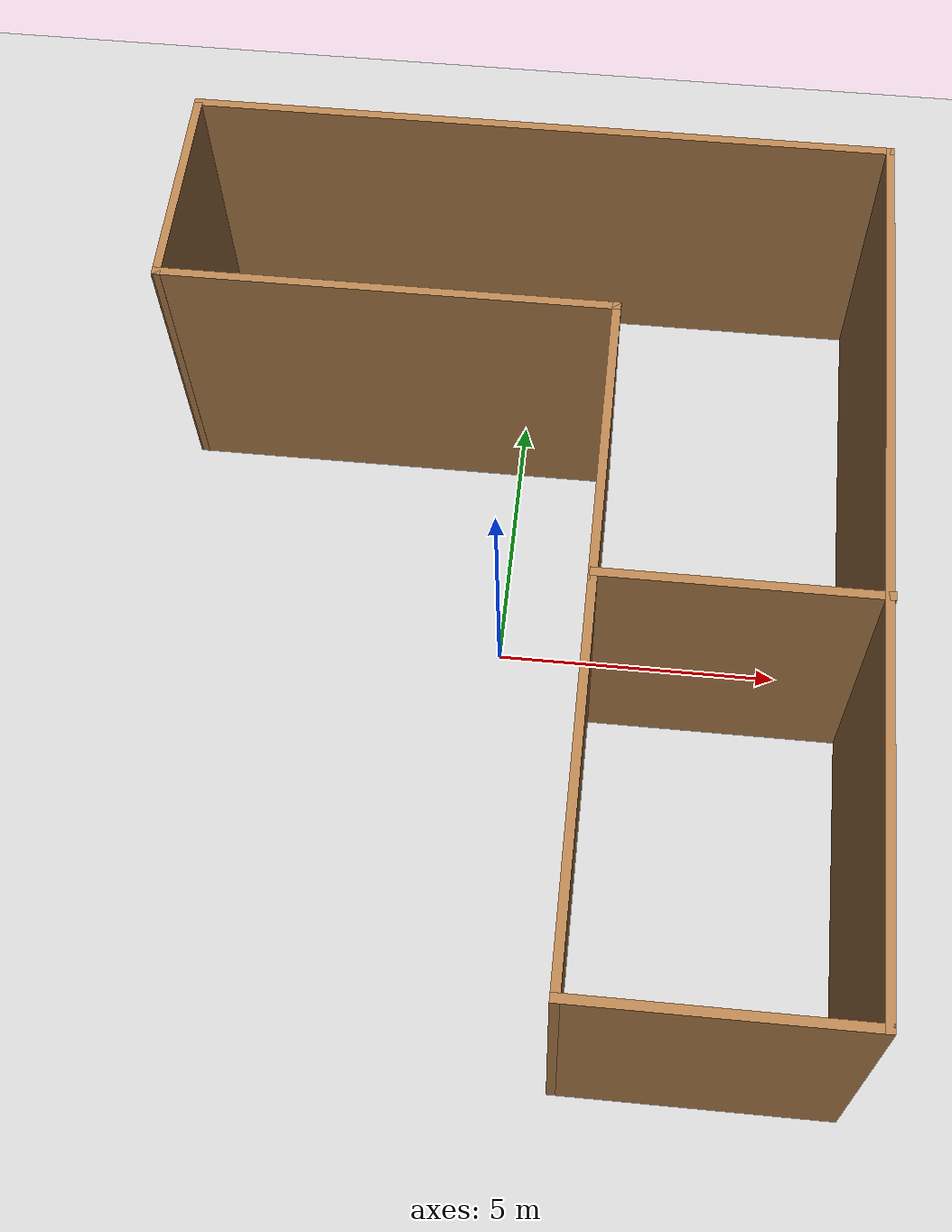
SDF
<sdf version="1.7">
 <world name="default">
  <plugin name="gazebo_ros_state" filename="libgazebo_ros_state.so">
   <ros>
    <namespace>/plug</namespace>
    <argument>model_states:=model_states_plug</argument>
    <argument>link_states:=link_states_plug</argument>
   </ros>
   <update_rate>100.0</update_rate>
  </plugin>
  <plugin name="disable_physics" filename="libdisable_physics.so"/>
  <light name="sun" type="directional">
   <pose>0 0 10 0 -0 0</pose>
   <diffuse>0.8 0.8 0.8 1</diffuse>
   <specular>0.2 0.2 0.2 1</specular>
   <attenuation>
    <range>1000</range>
    <constant>0.9</constant>
    <linear>0.01</linear>
    <quadratic>0.001</quadratic>
   </attenuation>
   <direction>-0.5 0.1 -0.9</direction>
   <spot><inner_angle>0</inner_angle><outer_angle>0</outer_angle><falloff>0</falloff></spot>
  </light>
  <model name="ground_plane">
   <static>1</static>
   <link name="link">
    <collision name="collision">
     <geometry><plane><normal>0 0 1</normal><size>100 100</size></plane></geometry>
     <surface>
      <contact><collide_bitmask>65535</collide_bitmask></contact>
      <friction><ode><mu>100</mu><mu2>50</mu2></ode></friction>
     </surface>
    </collision>
    <visual name="visual">
     <cast_shadows>0</cast_shadows>
     <geometry><plane><normal>0 0 1</normal><size>100 100</size></plane></geometry>
     <material>
      <script><uri>file://media/materials/scripts/gazebo.material</uri><name>Gazebo/Grey</name></script>
     </material>
    </visual>
   </link>
  </model>
  <gravity>0 0 -9.8</gravity>
  <magnetic_field>6e-06 2.3e-05 -4.2e-05</magnetic_field>
  <atmosphere type="adiabatic"/>
  <physics type="ode">
   <max_step_size>0.01</max_step_size>
   <real_time_factor>1</real_time_factor>
   <real_time_update_rate>100</real_time_update_rate>
  </physics>
  <scene><ambient>0.4 0.4 0.4 1</ambient><background>0.7 0.7 0.7 1</background><shadows>1</shadows></scene>
  <audio><device>default</device></audio>
  <spherical_coordinates>
   <surface_model>EARTH_WGS84</surface_model>
   <latitude_deg>0</latitude_deg>
   <longitude_deg>0</longitude_deg>
   <elevation>0</elevation>
   <heading_deg>0</heading_deg>
  </spherical_coordinates>
  <model name="static_uncertainty_test3">
   <link name="Wall_0">
    <pose>1.6283 1.373 0 0 -0 1.57022</pose>
    <visual name="Wall_0_Visual">
     <pose>0 0 2.75 0 -0 0</pose>
     <geometry><box><size>5.33059 0.15 5.5</size></box></geometry>
     <material>
      <script><uri>file://media/materials/scripts/gazebo.material</uri><name>Gazebo/Wood</name></script>
      <ambient>1 1 1 1</ambient>
      <shader type="pixel"/>
     </material>
     <meta><layer>0</layer></meta>
    </visual>
    <collision name="Wall_0_Collision">
     <pose>0 0 2.75 0 -0 0</pose>
     <geometry><box><size>5.33059 0.15 5.5</size></box></geometry>
     <surface>
      <friction>
       <ode><mu>1</mu><mu2>1</mu2><fdir1>0 0 0</fdir1><slip1>0</slip1><slip2>0</slip2></ode>
       <torsional>
        <coefficient>1</coefficient>
        <patch_radius>0</patch_radius>
        <surface_radius>0</surface_radius>
        <use_patch_radius>1</use_patch_radius>
        <ode><slip>0</slip></ode>
       </torsional>
      </friction>
      <bounce><restitution_coefficient>0</restitution_coefficient><threshold>1e+06</threshold></bounce>
      <contact>
       <collide_without_contact>0</collide_without_contact>
       <collide_without_contact_bitmask>1</collide_without_contact_bitmask>
       <collide_bitmask>1</collide_bitmask>
       <ode>
        <soft_cfm>0</soft_cfm>
        <soft_erp>0.2</soft_erp>
        <kp>1e+13</kp>
        <kd>1</kd>
        <max_vel>0.01</max_vel>
        <min_depth>0</min_depth>
       </ode>
       <bullet>
        <split_impulse>1</split_impulse>
        <split_impulse_penetration_threshold>-0.01</split_impulse_penetration_threshold>
        <soft_cfm>0</soft_cfm>
        <soft_erp>0.2</soft_erp>
        <kp>1e+13</kp>
        <kd>1</kd>
       </bullet>
      </contact>
     </surface>
    </collision>
   </link>
   <link name="Wall_1">
    <pose>-2.2802 3.9635 0 0 -0 3.14159</pose>
    <visual name="Wall_1_Visual">
     <pose>0 0 2.75 0 -0 0</pose>
     <geometry><box><size>7.96959 0.15 5.5</size></box></geometry>
     <material>
      <script><uri>file://media/materials/scripts/gazebo.material</uri><name>Gazebo/Wood</name></script>
      <ambient>1 1 1 1</ambient>
      <shader type="pixel"/>
     </material>
     <meta><layer>0</layer></meta>
    </visual>
    <collision name="Wall_1_Collision">
     <pose>0 0 2.75 0 -0 0</pose>
     <geometry><box><size>7.96959 0.15 5.5</size></box></geometry>
     <surface>
      <friction>
       <ode><mu>1</mu><mu2>1</mu2><fdir1>0 0 0</fdir1><slip1>0</slip1><slip2>0</slip2></ode>
       <torsional>
        <coefficient>1</coefficient>
        <patch_radius>0</patch_radius>
        <surface_radius>0</surface_radius>
        <use_patch_radius>1</use_patch_radius>
        <ode><slip>0</slip></ode>
       </torsional>
      </friction>
      <bounce><restitution_coefficient>0</restitution_coefficient><threshold>1e+06</threshold></bounce>
      <contact>
       <collide_without_contact>0</collide_without_contact>
       <collide_without_contact_bitmask>1</collide_without_contact_bitmask>
       <collide_bitmask>1</collide_bitmask>
       <ode>
        <soft_cfm>0</soft_cfm>
        <soft_erp>0.2</soft_erp>
        <kp>1e+13</kp>
        <kd>1</kd>
        <max_vel>0.01</max_vel>
        <min_depth>0</min_depth>
       </ode>
       <bullet>
        <split_impulse>1</split_impulse>
        <split_impulse_penetration_threshold>-0.01</split_impulse_penetration_threshold>
        <soft_cfm>0</soft_cfm>
        <soft_erp>0.2</soft_erp>
        <kp>1e+13</kp>
        <kd>1</kd>
       </bullet>
      </contact>
     </surface>
    </collision>
   </link>
   <link name="Wall_2">
    <pose>-6.1747 5.873 0 0 -0 1.56268</pose>
    <visual name="Wall_2_Visual">
     <pose>0 0 2.75 0 -0 0</pose>
     <geometry><box><size>3.9699 0.15 5.5</size></box></geometry>
     <material>
      <script><uri>file://media/materials/scripts/gazebo.material</uri><name>Gazebo/Wood</name></script>
      <ambient>1 1 1 1</ambient>
      <shader type="pixel"/>
     </material>
     <meta><layer>0</layer></meta>
    </visual>
    <collision name="Wall_2_Collision">
     <pose>0 0 2.75 0 -0 0</pose>
     <geometry><box><size>3.9699 0.15 5.5</size></box></geometry>
     <surface>
      <friction>
       <ode><mu>1</mu><mu2>1</mu2><fdir1>0 0 0</fdir1><slip1>0</slip1><slip2>0</slip2></ode>
       <torsional>
        <coefficient>1</coefficient>
        <patch_radius>0</patch_radius>
        <surface_radius>0</surface_radius>
        <use_patch_radius>1</use_patch_radius>
        <ode><slip>0</slip></ode>
       </torsional>
      </friction>
      <bounce><restitution_coefficient>0</restitution_coefficient><threshold>1e+06</threshold></bounce>
      <contact>
       <collide_without_contact>0</collide_without_contact>
       <collide_without_contact_bitmask>1</collide_without_contact_bitmask>
       <collide_bitmask>1</collide_bitmask>
       <ode>
        <soft_cfm>0</soft_cfm>
        <soft_erp>0.2</soft_erp>
        <kp>1e+13</kp>
        <kd>1</kd>
        <max_vel>0.01</max_vel>
        <min_depth>0</min_depth>
       </ode>
       <bullet>
        <split_impulse>1</split_impulse>
        <split_impulse_penetration_threshold>-0.01</split_impulse_penetration_threshold>
        <soft_cfm>0</soft_cfm>
        <soft_erp>0.2</soft_erp>
        <kp>1e+13</kp>
        <kd>1</kd>
       </bullet>
      </contact>
     </surface>
    </collision>
   </link>
   <link name="Wall_3">
    <pose>0.015804 7.7825 0 0 -0 0</pose>
    <visual name="Wall_3_Visual">
     <pose>0 0 2.75 0 -0 0</pose>
     <geometry><box><size>12.5 0.15 5.5</size></box></geometry>
     <material>
      <script><uri>file://media/materials/scripts/gazebo.material</uri><name>Gazebo/Wood</name></script>
      <ambient>1 1 1 1</ambient>
      <shader type="pixel"/>
     </material>
     <meta><layer>0</layer></meta>
    </visual>
    <collision name="Wall_3_Collision">
     <pose>0 0 2.75 0 -0 0</pose>
     <geometry><box><size>12.5 0.15 5.5</size></box></geometry>
     <surface>
      <friction>
       <ode><mu>1</mu><mu2>1</mu2><fdir1>0 0 0</fdir1><slip1>0</slip1><slip2>0</slip2></ode>
       <torsional>
        <coefficient>1</coefficient>
        <patch_radius>0</patch_radius>
        <surface_radius>0</surface_radius>
        <use_patch_radius>1</use_patch_radius>
        <ode><slip>0</slip></ode>
       </torsional>
      </friction>
      <bounce><restitution_coefficient>0</restitution_coefficient><threshold>1e+06</threshold></bounce>
      <contact>
       <collide_without_contact>0</collide_without_contact>
       <collide_without_contact_bitmask>1</collide_without_contact_bitmask>
       <collide_bitmask>1</collide_bitmask>
       <ode>
        <soft_cfm>0</soft_cfm>
        <soft_erp>0.2</soft_erp>
        <kp>1e+13</kp>
        <kd>1</kd>
        <max_vel>0.01</max_vel>
        <min_depth>0</min_depth>
       </ode>
       <bullet>
        <split_impulse>1</split_impulse>
        <split_impulse_penetration_threshold>-0.01</split_impulse_penetration_threshold>
        <soft_cfm>0</soft_cfm>
        <soft_erp>0.2</soft_erp>
        <kp>1e+13</kp>
        <kd>1</kd>
       </bullet>
      </contact>
     </surface>
    </collision>
   </link>
   <link name="Wall_4">
    <pose>6.1908 -0.017499 0 0 0 -1.5708</pose>
    <visual name="Wall_4_Visual">
     <pose>0 0 2.75 0 -0 0</pose>
     <geometry><box><size>15.75 0.15 5.5</size></box></geometry>
     <material>
      <script><uri>file://media/materials/scripts/gazebo.material</uri><name>Gazebo/Wood</name></script>
      <ambient>1 1 1 1</ambient>
      <shader type="pixel"/>
     </material>
     <meta><layer>0</layer></meta>
    </visual>
    <collision name="Wall_4_Collision">
     <pose>0 0 2.75 0 -0 0</pose>
     <geometry><box><size>15.75 0.15 5.5</size></box></geometry>
     <surface>
      <friction>
       <ode><mu>1</mu><mu2>1</mu2><fdir1>0 0 0</fdir1><slip1>0</slip1><slip2>0</slip2></ode>
       <torsional>
        <coefficient>1</coefficient>
        <patch_radius>0</patch_radius>
        <surface_radius>0</surface_radius>
        <use_patch_radius>1</use_patch_radius>
        <ode><slip>0</slip></ode>
       </torsional>
      </friction>
      <bounce><restitution_coefficient>0</restitution_coefficient><threshold>1e+06</threshold></bounce>
      <contact>
       <collide_without_contact>0</collide_without_contact>
       <collide_without_contact_bitmask>1</collide_without_contact_bitmask>
       <collide_bitmask>1</collide_bitmask>
       <ode>
        <soft_cfm>0</soft_cfm>
        <soft_erp>0.2</soft_erp>
        <kp>1e+13</kp>
        <kd>1</kd>
        <max_vel>0.01</max_vel>
        <min_depth>0</min_depth>
       </ode>
       <bullet>
        <split_impulse>1</split_impulse>
        <split_impulse_penetration_threshold>-0.01</split_impulse_penetration_threshold>
        <soft_cfm>0</soft_cfm>
        <soft_erp>0.2</soft_erp>
        <kp>1e+13</kp>
        <kd>1</kd>
       </bullet>
      </contact>
     </surface>
    </collision>
   </link>
   <link name="Wall_5">
    <pose>3.9088 -7.8175 0 0 -0 3.14159</pose>
    <visual name="Wall_5_Visual">
     <pose>0 0 2.75 0 -0 0</pose>
     <geometry><box><size>4.714 0.15 5.5</size></box></geometry>
     <material>
      <script><uri>file://media/materials/scripts/gazebo.material</uri><name>Gazebo/Wood</name></script>
      <ambient>1 1 1 1</ambient>
      <shader type="pixel"/>
     </material>
     <meta><layer>0</layer></meta>
    </visual>
    <collision name="Wall_5_Collision">
     <pose>0 0 2.75 0 -0 0</pose>
     <geometry><box><size>4.714 0.15 5.5</size></box></geometry>
     <surface>
      <friction>
       <ode><mu>1</mu><mu2>1</mu2><fdir1>0 0 0</fdir1><slip1>0</slip1><slip2>0</slip2></ode>
       <torsional>
        <coefficient>1</coefficient>
        <patch_radius>0</patch_radius>
        <surface_radius>0</surface_radius>
        <use_patch_radius>1</use_patch_radius>
        <ode><slip>0</slip></ode>
       </torsional>
      </friction>
      <bounce><restitution_coefficient>0</restitution_coefficient><threshold>1e+06</threshold></bounce>
      <contact>
       <collide_without_contact>0</collide_without_contact>
       <collide_without_contact_bitmask>1</collide_without_contact_bitmask>
       <collide_bitmask>1</collide_bitmask>
       <ode>
        <soft_cfm>0</soft_cfm>
        <soft_erp>0.2</soft_erp>
        <kp>1e+13</kp>
        <kd>1</kd>
        <max_vel>0.01</max_vel>
        <min_depth>0</min_depth>
       </ode>
       <bullet>
        <split_impulse>1</split_impulse>
        <split_impulse_penetration_threshold>-0.01</split_impulse_penetration_threshold>
        <soft_cfm>0</soft_cfm>
        <soft_erp>0.2</soft_erp>
        <kp>1e+13</kp>
        <kd>1</kd>
       </bullet>
      </contact>
     </surface>
    </collision>
   </link>
   <link name="Wall_5_clone">
    <pose>3.93188 -1.13536 0 0 -0 3.14159</pose>
    <visual name="Wall_5_Visual">
     <pose>0 0 2.75 0 -0 0</pose>
     <geometry><box><size>4.714 0.15 5.5</size></box></geometry>
     <material>
      <script><uri>file://media/materials/scripts/gazebo.material</uri><name>Gazebo/Wood</name></script>
      <ambient>1 1 1 1</ambient>
      <shader type="pixel"/>
     </material>
     <meta><layer>0</layer></meta>
    </visual>
    <collision name="Wall_5_Collision">
     <pose>0 0 2.75 0 -0 0</pose>
     <geometry><box><size>4.714 0.15 5.5</size></box></geometry>
     <surface>
      <friction>
       <ode><mu>1</mu><mu2>1</mu2><fdir1>0 0 0</fdir1><slip1>0</slip1><slip2>0</slip2></ode>
       <torsional>
        <coefficient>1</coefficient>
        <patch_radius>0</patch_radius>
        <surface_radius>0</surface_radius>
        <use_patch_radius>1</use_patch_radius>
        <ode><slip>0</slip></ode>
       </torsional>
      </friction>
      <bounce><restitution_coefficient>0</restitution_coefficient><threshold>1e+06</threshold></bounce>
      <contact>
       <collide_without_contact>0</collide_without_contact>
       <collide_without_contact_bitmask>1</collide_without_contact_bitmask>
       <collide_bitmask>1</collide_bitmask>
       <ode>
        <soft_cfm>0</soft_cfm>
        <soft_erp>0.2</soft_erp>
        <kp>1e+13</kp>
        <kd>1</kd>
        <max_vel>0.01</max_vel>
        <min_depth>0</min_depth>
       </ode>
       <bullet>
        <split_impulse>1</split_impulse>
        <split_impulse_penetration_threshold>-0.01</split_impulse_penetration_threshold>
        <soft_cfm>0</soft_cfm>
        <soft_erp>0.2</soft_erp>
        <kp>1e+13</kp>
        <kd>1</kd>
       </bullet>
      </contact>
     </surface>
    </collision>
   </link>
   <link name="Wall_6">
    <pose>1.6268 -4.5175 0 0 -0 1.5708</pose>
    <visual name="Wall_6_Visual">
     <pose>0 0 2.75 0 -0 0</pose>
     <geometry><box><size>6.75 0.15 5.5</size></box></geometry>
     <material>
      <script><uri>file://media/materials/scripts/gazebo.material</uri><name>Gazebo/Wood</name></script>
      <ambient>1 1 1 1</ambient>
      <shader type="pixel"/>
     </material>
     <meta><layer>0</layer></meta>
    </visual>
    <collision name="Wall_6_Collision">
     <pose>0 0 2.75 0 -0 0</pose>
     <geometry><box><size>6.75 0.15 5.5</size></box></geometry>
     <surface>
      <friction>
       <ode><mu>1</mu><mu2>1</mu2><fdir1>0 0 0</fdir1><slip1>0</slip1><slip2>0</slip2></ode>
       <torsional>
        <coefficient>1</coefficient>
        <patch_radius>0</patch_radius>
        <surface_radius>0</surface_radius>
        <use_patch_radius>1</use_patch_radius>
        <ode><slip>0</slip></ode>
       </torsional>
      </friction>
      <bounce><restitution_coefficient>0</restitution_coefficient><threshold>1e+06</threshold></bounce>
      <contact>
       <collide_without_contact>0</collide_without_contact>
       <collide_without_contact_bitmask>1</collide_without_contact_bitmask>
       <collide_bitmask>1</collide_bitmask>
       <ode>
        <soft_cfm>0</soft_cfm>
        <soft_erp>0.2</soft_erp>
        <kp>1e+13</kp>
        <kd>1</kd>
        <max_vel>0.01</max_vel>
        <min_depth>0</min_depth>
       </ode>
       <bullet>
        <split_impulse>1</split_impulse>
        <split_impulse_penetration_threshold>-0.01</split_impulse_penetration_threshold>
        <soft_cfm>0</soft_cfm>
        <soft_erp>0.2</soft_erp>
        <kp>1e+13</kp>
        <kd>1</kd>
       </bullet>
      </contact>
     </surface>
    </collision>
   </link>
   <static>1</static>
   <pose>-0.001953 0.062617 0 0 -0 0</pose>
  </model>
 </world>
</sdf>
